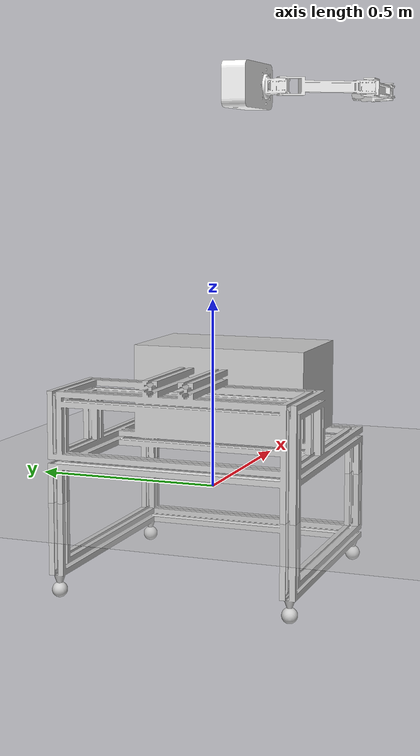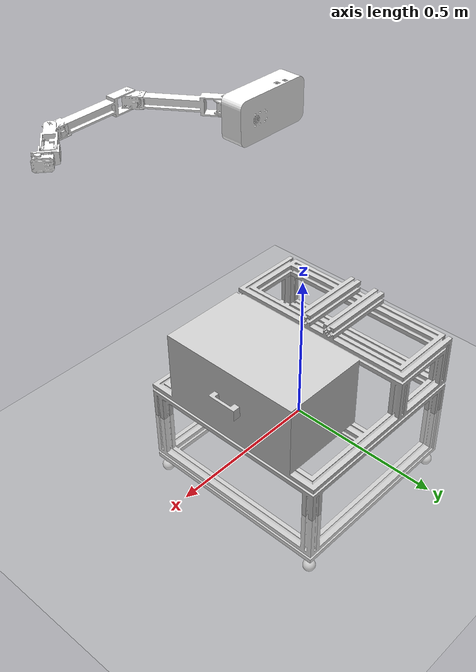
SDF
<?xml version='1.0'?>
<sdf version='1.4'>

<model name="ik_robot">
    <include>
      <uri>model://robot_arm</uri>
      <pose>0.0 0 1.0 0 0 0</pose>
    </include>

    <include>
      <uri>model://arm_base</uri>
      <pose>0 0 0 0 0 0</pose>
    </include>

    <include>
      <uri>model://ground_plane</uri>
    </include>

    <joint name="fixed to ground" type="revolute">
      <parent>ground_plane::link</parent>
      <child>robot_arm_base::body</child>
       <axis>
        <limit>
          <lower>0</lower>
          <upper>0</upper>
        </limit>
        <xyz>0 0 1</xyz>
        </axis>
    </joint>

    <joint name="shoulder_joint" type="revolute">
      <parent>robot_arm_base::body</parent>
      <child>robot_arm::shoulder_rotator</child>
      <axis>
        <xyz>0 0 1</xyz>
      </axis>
    </joint>
  </model>

</sdf>

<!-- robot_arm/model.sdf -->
<sdf version='1.7'>
  <model name='robot_arm'>
    <link name='base_link'>
      <inertial>
        <pose>0.10153 0.059553 0.056505 0 -0 0</pose>
        <mass>0.43622</mass>
        <inertia>
          <ixx>0.00082285</ixx>
          <ixy>0</ixy>
          <ixz>0</ixz>
          <iyy>0.00064528</iyy>
          <iyz>0</iyz>
          <izz>0.0013806</izz>
        </inertia>
      </inertial>
      <collision name='base_link_collision'>
        <pose>0 0 0 0 -0 0</pose>
        <geometry>
          <mesh>
            <scale>1 1 1</scale>
            <uri>model://robot_arm/meshes/base_link.STL</uri>
          </mesh>
        </geometry>
      </collision>
      <visual name='base_link_visual'>
        <pose>0 0 0 0 -0 0</pose>
        <geometry>
          <mesh>
            <scale>1 1 1</scale>
            <uri>model://robot_arm/meshes/base_link.STL</uri>
          </mesh>
        </geometry>
        <material>
         <ambient>0 0 0 1</ambient>
         <diffuse>1 1 1 1</diffuse>
         <emissive>0 0 0 1</emissive>
         <specular>0 0 0 0</specular>
        </material>
      </visual>
    </link>
    <joint name='first_yaw' type='revolute'>
      <pose relative_to='base_link'>0.16463 -0.043952 0.059652 1.5708 -0 0</pose>
      <parent>base_link</parent>
      <child>first_Link</child>
      <axis>
        <xyz>0 0 1</xyz>
        <limit>
      		<effort>-1</effort> //토크 제한을 무한으로
      		<velocity>-1</velocity> //속도 제한을 무한으로
 	</limit>
        <dynamics>
          <spring_reference>0</spring_reference>
          <spring_stiffness>0</spring_stiffness>
        </dynamics>
      </axis>
    </joint>
    <link name='first_Link'>
      <pose relative_to='first_yaw'>0 0 0 0 -0 0</pose>
      <inertial>
        <pose>-0.001688 5.3e-05 0.037491 0 0.53 0</pose>
        <mass>0.27473</mass>
        <inertia>
          <ixx>0.00013933</ixx>
          <ixy>0</ixy>
          <ixz>0</ixz>
          <iyy>0.00014014</iyy>
          <iyz>0</iyz>
          <izz>0.00022755</izz>
        </inertia>
      </inertial>
      <collision name='first_Link_collision'>
        <pose>0 0 0 0 -0 0</pose>
        <geometry>
          <mesh>
            <scale>1 1 1</scale>
            <uri>model://robot_arm/meshes/first_Link.STL</uri>
          </mesh>
        </geometry>
      </collision>
      <visual name='first_Link_visual'>
        <pose>0 0 0 0 -0 0</pose>
        <geometry>
          <mesh>
            <scale>1 1 1</scale>
            <uri>model://robot_arm/meshes/first_Link.STL</uri>
          </mesh>
        </geometry>
        <material>
         <ambient>0 0 0 1</ambient>
         <diffuse>1 1 1 1</diffuse>
         <emissive>0 0 0 1</emissive>
         <specular>0 0 0 0</specular>
        </material>
      </visual>
    </link>
    <joint name='second_pitch' type='revolute'>
      <pose relative_to='first_Link'>1.2e-05 0.000725 0.095227 0 0.6 0</pose>
      <parent>first_Link</parent>
      <child>second_Link</child>
      <axis>
        <xyz>0 1 0</xyz>
        <limit>
      		<effort>-1</effort> //토크 제한을 무한으로
      		<velocity>-1</velocity> //속도 제한을 무한으로
 	</limit>
        <dynamics>
          <spring_reference>0</spring_reference>
          <spring_stiffness>0</spring_stiffness>
        </dynamics>
      </axis>
    </joint>
    <link name='second_Link'>
      <pose relative_to='second_pitch'>0 0 0 0 -0 0</pose>
      <inertial>
        <pose>-1.3e-05 2.4e-05 0.14715 0 0.53 0</pose>
        <mass>0.13965</mass>
        <inertia>
          <ixx>0.00022774</ixx>
          <ixy>0</ixy>
          <ixz>0</ixz>
          <iyy>0.00022298</iyy>
          <iyz>0</iyz>
          <izz>2.3425e-05</izz>
        </inertia>
      </inertial>
      <collision name='second_Link_collision'>
        <pose>0 0 0 0 -0 0</pose>
        <geometry>
          <mesh>
            <scale>1 1 1</scale>
            <uri>model://robot_arm/meshes/second_Link.STL</uri>
          </mesh>
        </geometry>
      </collision>
      <visual name='second_Link_visual'>
        <pose>0 0 0 0 -0 0</pose>
        <geometry>
          <mesh>
            <scale>1 1 1</scale>
            <uri>model://robot_arm/meshes/second_Link.STL</uri>
          </mesh>
        </geometry>
        <material>
         <ambient>0 0 0 1</ambient>
         <diffuse>1 1 1 1</diffuse>
         <emissive>0 0 0 1</emissive>
         <specular>0 0 0 0</specular>
        </material>
      </visual>
    </link>
    <joint name='third_pitch' type='revolute'>
      <pose relative_to='second_Link'>0 0.000475 0.244 0 1 0</pose>
      <parent>second_Link</parent>
      <child>third_Link</child>
      <axis>
        <xyz>0 1 0</xyz>
        <limit>
      		<effort>-1</effort> //토크 제한을 무한으로
      		<velocity>-1</velocity> //속도 제한을 무한으로
 	</limit>
        <dynamics>
          <spring_reference>0</spring_reference>
          <spring_stiffness>0</spring_stiffness>
        </dynamics>
      </axis>
    </joint>
    <link name='third_Link'>
      <pose relative_to='third_pitch'>0 0 0 0 -0 0</pose>
      <inertial>
        <pose>-1.3e-05 2.4e-05 0.14715 0 1 0</pose>
        <mass>0.13965</mass>
        <inertia>
          <ixx>0.00022774</ixx>
          <ixy>0</ixy>
          <ixz>0</ixz>
          <iyy>0.00022298</iyy>
          <iyz>0</iyz>
          <izz>2.3425e-05</izz>
        </inertia>
      </inertial>
      <collision name='third_Link_collision'>
        <pose>0 0 0 0 -0 0</pose>
        <geometry>
          <mesh>
            <scale>1 1 1</scale>
            <uri>model://robot_arm/meshes/third_Link.STL</uri>
          </mesh>
        </geometry>
      </collision>
      <visual name='third_Link_visual'>
        <pose>0 0 0 0 -0 0</pose>
        <geometry>
          <mesh>
            <scale>1 1 1</scale>
            <uri>model://robot_arm/meshes/third_Link.STL</uri>
          </mesh>
        </geometry>
        <material>
         <ambient>0 0 0 1</ambient>
         <diffuse>1 1 1 1</diffuse>
         <emissive>0 0 0 1</emissive>
         <specular>0 0 0 0</specular>
        </material>
      </visual>
    </link>
    <joint name='fourth_pitch' type='revolute'>
      <pose relative_to='third_Link'>0 0 0.244 0 0.85 0</pose>
      <parent>third_Link</parent>
      <child>foutrh_Link</child>
      <axis>
        <xyz>0 1 0</xyz>
        <limit>
      		<effort>-1</effort> //토크 제한을 무한으로
      		<velocity>-1</velocity> //속도 제한을 무한으로
 	</limit>
        <dynamics>
          <spring_reference>0</spring_reference>
          <spring_stiffness>0</spring_stiffness>
        </dynamics>
      </axis>
    </joint>
    <link name='foutrh_Link'>
      <pose relative_to='fourth_pitch'>0 0 0 0 -0 0</pose>
      <inertial>
        <pose>-0.000172 0.000474 0.065219 0 0.85 0</pose>
        <mass>0.090943</mass>
        <inertia>
          <ixx>5.4292e-05</ixx>
          <ixy>0</ixy>
          <ixz>0</ixz>
          <iyy>4.9911e-05</iyy>
          <iyz>0</iyz>
          <izz>2.972e-05</izz>
        </inertia>
      </inertial>
      <collision name='foutrh_Link_collision'>
        <pose>0 0 0 0 -0 0</pose>
        <geometry>
          <mesh>
            <scale>1 1 1</scale>
            <uri>model://robot_arm/meshes/foutrh_Link.STL</uri>
          </mesh>
        </geometry>
      </collision>
      <visual name='foutrh_Link_visual'>
        <pose>0 0 0 0 -0 0</pose>
        <geometry>
          <mesh>
            <scale>1 1 1</scale>
            <uri>model://robot_arm/meshes/foutrh_Link.STL</uri>
          </mesh>
        </geometry>
        <material>
         <ambient>0 0 0 1</ambient>
         <diffuse>1 1 1 1</diffuse>
         <emissive>0 0 0 1</emissive>
         <specular>0 0 0 0</specular>
        </material>
      </visual>
    </link>
	<joint name='fifth_pitch' type='revolute'>
      <pose relative_to='foutrh_Link'>-0.000262 0.000487 0.0936 0 0 0</pose>
      <parent>foutrh_Link</parent>
      <child>fifth_Link</child>
      <axis>
        <xyz>1 0 0</xyz>
        <limit>
      		<effort>-1</effort> //토크 제한을 무한으로
      		<velocity>-1</velocity> //속도 제한을 무한으로
 	</limit>
        <dynamics>
          <spring_reference>0</spring_reference>
          <spring_stiffness>0</spring_stiffness>
        </dynamics>
      </axis>
    </joint>
    <link name='fifth_Link'>
      <pose relative_to='fifth_pitch'>0 0 0 0 -0 0</pose>
      <inertial>
        <pose>9e-05 -1.3e-05 -0.028381 0 0 0</pose>
        <mass>0.090943</mass>
        <inertia>
          <ixx>5.4292e-05</ixx>
          <ixy>0</ixy>
          <ixz>0</ixz>
          <iyy>4.9911e-05</iyy>
          <iyz>0</iyz>
          <izz>2.972e-05</izz>
        </inertia>
      </inertial>
      <collision name='fifth_Link_collision'>
        <pose>0 0 0 0 -0 0</pose>
        <geometry>
          <mesh>
            <scale>1 1 1</scale>
            <uri>model://robot_arm/meshes/fifth_Link.STL</uri>
          </mesh>
        </geometry>
      </collision>
      <visual name='fifth_Link_visual'>
        <pose>0 0 0 0 -0 0</pose>
        <geometry>
          <mesh>
            <scale>0 0 0</scale>
            <uri>model://robot_arm/meshes/fifth_Link.STL</uri>
          </mesh>
        </geometry>
        <material>
         <ambient>0 0 0 1</ambient>
         <diffuse>1 1 1 1</diffuse>
         <emissive>0 0 0 1</emissive>
         <specular>0 0 0 0</specular>
        </material>
      </visual>
    </link>

    <joint name='sixth_roll' type='revolute'>
      <pose relative_to='fifth_Link'>-0.000475 -1.2e-05 0.049873 0 0 0</pose>
      <parent>fifth_Link</parent>
      <child>sixth_Link</child>
      <axis>
        <xyz>0 0 1</xyz>
        <limit>
      		<effort>-1</effort> //토크 제한을 무한으로
      		<velocity>-1</velocity> //속도 제한을 무한으로
 	</limit>
        <dynamics>
          <spring_reference>0</spring_reference>
          <spring_stiffness>0</spring_stiffness>
        </dynamics>
      </axis>
    </joint>
    <link name='sixth_Link'>
      <pose relative_to='sixth_roll'>0 0 0 0 -0 0</pose>
      <inertial>
        <pose>-0.008434 -1e-06 -0.008997 0 0 0</pose>
        <mass>0.063937</mass>
        <inertia>
          <ixx>1.2986e-05</ixx>
          <ixy>0</ixy>
          <ixz>0</ixz>
          <iyy>2.4205e-05</iyy>
          <iyz>0</iyz>
          <izz>2.0655e-05</izz>
        </inertia>
      </inertial>
      <collision name='sixth_Link_collision'>
        <pose>0 0 0 0 -0 0</pose>
        <geometry>
          <mesh>
            <scale>1 1 1</scale>
            <uri>model://robot_arm/meshes/sixth_Link.STL</uri>
          </mesh>
        </geometry>
      </collision>
      <visual name='sixth_Link_visual'>
        <pose>0 0 0 0 -0 0</pose>
        <geometry>
          <mesh>
            <scale>1 1 1</scale>
            <uri>model://robot_arm/meshes/sixth_Link.STL</uri>
          </mesh>
        </geometry>
        <material>
         <ambient>0 0 0 1</ambient>
         <diffuse>1 1 1 1</diffuse>
         <emissive>0 0 0 1</emissive>
         <specular>0 0 0 0</specular>
        </material>
      </visual>
    </link>
  </model>
</sdf>

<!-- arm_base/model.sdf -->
<sdf version='1.7'>
  <model name='arm_base'>
    <link name='link'>
      <inertial>
        <mass>1</mass>
        <inertia>
          <ixx>0.166667</ixx>
          <ixy>0</ixy>
          <ixz>0</ixz>
          <iyy>0.166667</iyy>
          <iyz>0</iyz>
          <izz>0.166667</izz>
        </inertia>
        <pose>0 0 0 0 -0 0</pose>
      </inertial>
      <self_collide>0</self_collide>
      <enable_wind>0</enable_wind>
      <kinematic>0</kinematic>
      <pose>0 0 0 0 -0 0</pose>
      <gravity>1</gravity>
      <visual name='visual1'>
        <cast_shadows>0</cast_shadows>
        <geometry>
          <mesh>
            <uri>model://arm_base/meshes/arm_base.dae</uri>
          </mesh>
        </geometry>
        <material>
          <shader type='pixel'>
            <normal_map>__default__</normal_map>
          </shader>
          <emissive>0 0 0 1</emissive>

        </material>
        <pose>0 0 -0.25 0 -0 0</pose>
        <transparency>0</transparency>
        <pose>0 0 0 0 -0 0</pose>
        <transparency>0</transparency>
      </visual>
      <collision name='collision'>
        <laser_retro>0</laser_retro>
        <max_contacts>10</max_contacts>
        <pose>0 0 0 0 -0 0</pose>
        <geometry>
          <box>
            <size>0.7 0.7 0.52</size>
          </box>
        </geometry>
        <surface>
          <friction>
            <ode>
              <mu>1</mu>
              <mu2>1</mu2>
              <fdir1>0 0 0</fdir1>
              <slip1>0</slip1>
              <slip2>0</slip2>
            </ode>
            <torsional>
              <coefficient>1</coefficient>
              <patch_radius>0</patch_radius>
              <surface_radius>0</surface_radius>
              <use_patch_radius>1</use_patch_radius>
              <ode>
                <slip>0</slip>
              </ode>
            </torsional>
          </friction>
          <bounce>
            <restitution_coefficient>0</restitution_coefficient>
            <threshold>1e+06</threshold>
          </bounce>
          <contact>
            <collide_without_contact>0</collide_without_contact>
            <collide_without_contact_bitmask>1</collide_without_contact_bitmask>
            <collide_bitmask>1</collide_bitmask>
            <ode>
              <soft_cfm>0</soft_cfm>
              <soft_erp>0.2</soft_erp>
              <kp>1e+13</kp>
              <kd>1</kd>
              <max_vel>0.01</max_vel>
              <min_depth>0</min_depth>
            </ode>
            <bullet>
              <split_impulse>1</split_impulse>
              <split_impulse_penetration_threshold>-0.01</split_impulse_penetration_threshold>
              <soft_cfm>0</soft_cfm>
              <soft_erp>0.2</soft_erp>
              <kp>1e+13</kp>
              <kd>1</kd>
            </bullet>
          </contact>
        </surface>
      </collision>
    </link>
    <static>1</static>
    <allow_auto_disable>1</allow_auto_disable>
  </model>
</sdf>
